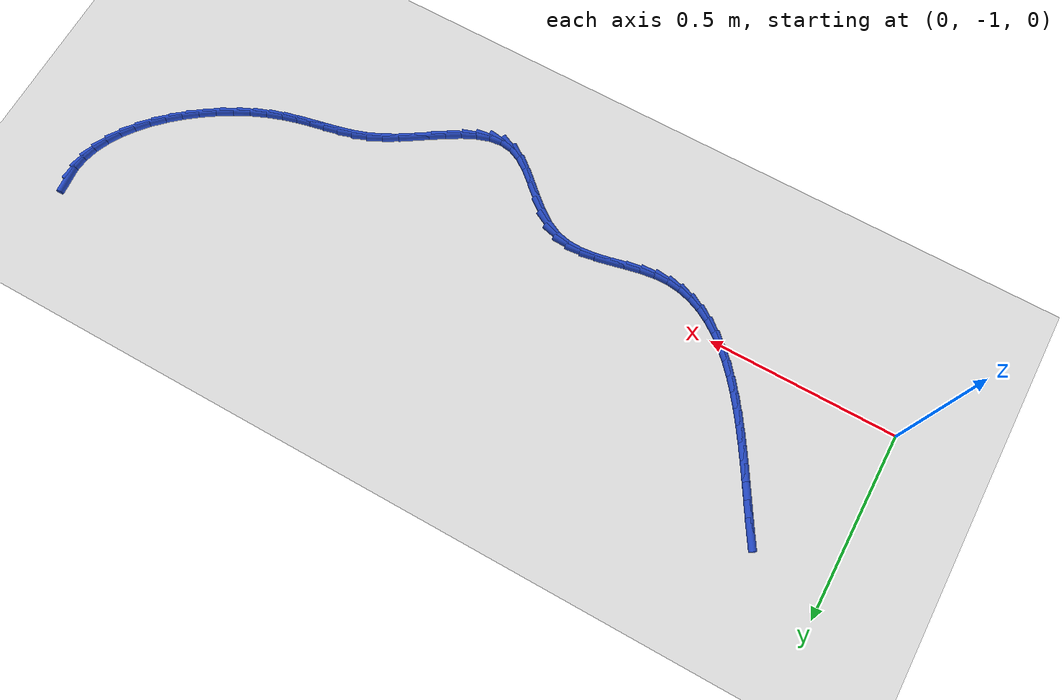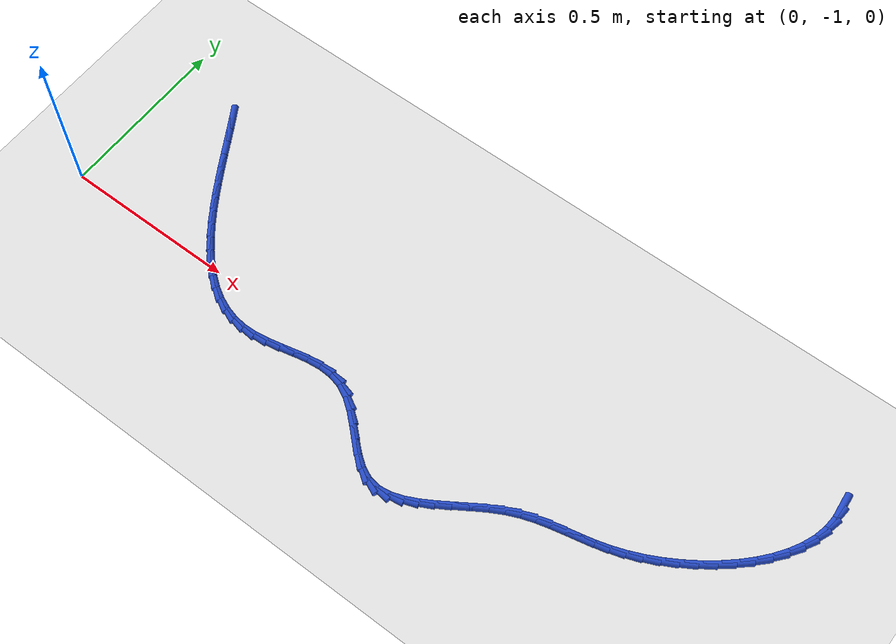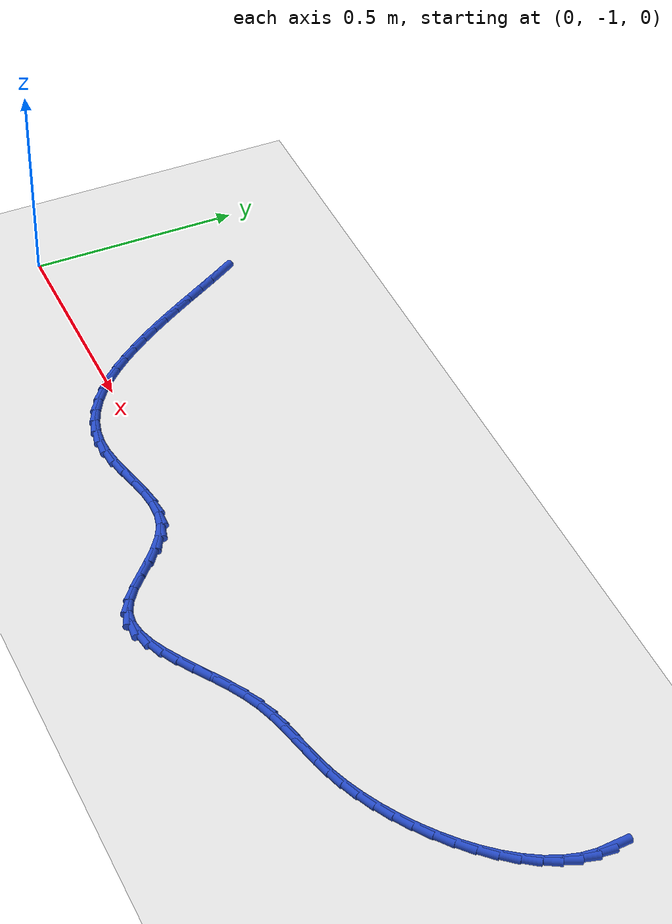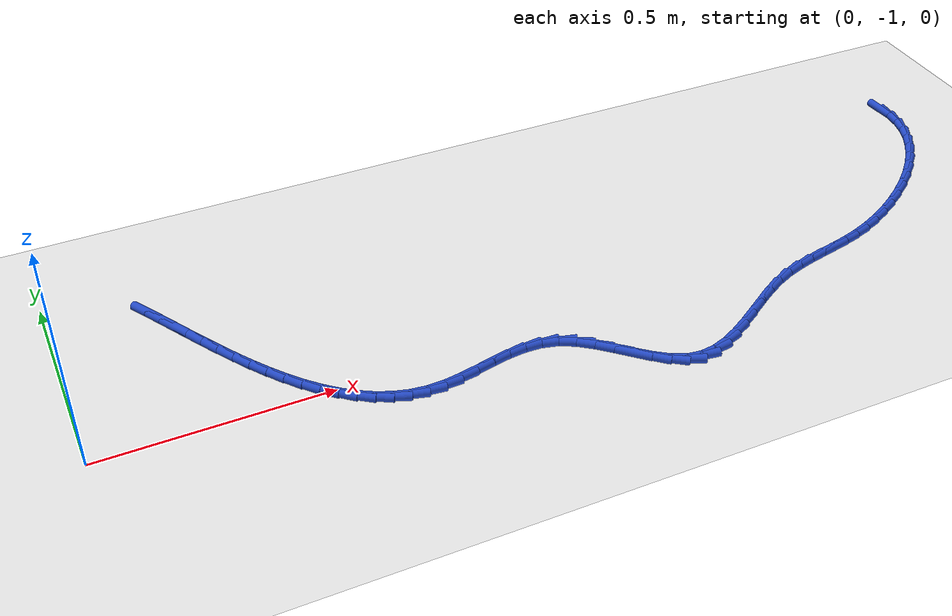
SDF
<sdf version="1.6">
 <world name="default">
  <model name="ground_plane">
   <static>1</static>
   <link name="link">
    <collision name="collision">
     <geometry><plane><normal>0 0 1</normal><size>100 100</size></plane></geometry>
     <surface><friction><ode><mu>100</mu><mu2>50</mu2></ode></friction></surface>
    </collision>
    <visual name="visual">
     <cast_shadows>0</cast_shadows>
     <geometry><plane><normal>0 0 1</normal><size>100 100</size></plane></geometry>
     <material>
      <script><uri>file://media/materials/scripts/gazebo.material</uri><name>Gazebo/WhiteGlow</name></script>
     </material>
    </visual>
   </link>
  </model>
  <model name="line">
   <link name="link_110">
    <pose>2.1453723418731316 -0.5781699876458133 0.01 0 1.57 -1.4833399422382945</pose>
    <collision name="collision">
     <geometry><cylinder><radius>0.01</radius><length>0.08</length></cylinder></geometry>
    </collision>
    <visual name="visual">
     <material>
      <script><name>Gazebo/Blue</name><uri>file://media/materials/scripts/gazebo.material</uri></script>
     </material>
     <geometry><cylinder><radius>0.01</radius><length>0.08</length></cylinder></geometry>
    </visual>
   </link>
   <link name="link_111">
    <pose>2.148490504637371 -0.6137329581880271 0.01 0 1.57 1.4764682847433395</pose>
    <collision name="collision">
     <geometry><cylinder><radius>0.01</radius><length>0.08</length></cylinder></geometry>
    </collision>
    <visual name="visual">
     <material>
      <script><name>Gazebo/Blue</name><uri>file://media/materials/scripts/gazebo.material</uri></script>
     </material>
     <geometry><cylinder><radius>0.01</radius><length>0.08</length></cylinder></geometry>
    </visual>
   </link>
   <link name="link_112">
    <pose>2.145111471984344 -0.6494487927089305 0.01 0 1.57 1.314288769849825</pose>
    <collision name="collision">
     <geometry><cylinder><radius>0.01</radius><length>0.08</length></cylinder></geometry>
    </collision>
    <visual name="visual">
     <material>
      <script><name>Gazebo/Blue</name><uri>file://media/materials/scripts/gazebo.material</uri></script>
     </material>
     <geometry><cylinder><radius>0.01</radius><length>0.08</length></cylinder></geometry>
    </visual>
   </link>
   <link name="link_113">
    <pose>2.135772142533697 -0.6850563001576554 0.01 0 1.57 1.1740667275033256</pose>
    <collision name="collision">
     <geometry><cylinder><radius>0.01</radius><length>0.08</length></cylinder></geometry>
    </collision>
    <visual name="visual">
     <material>
      <script><name>Gazebo/Blue</name><uri>file://media/materials/scripts/gazebo.material</uri></script>
     </material>
     <geometry><cylinder><radius>0.01</radius><length>0.08</length></cylinder></geometry>
    </visual>
   </link>
   <link name="link_114">
    <pose>2.1210094149050764 -0.7202942894833325 0.01 0 1.57 1.0544070582088172</pose>
    <collision name="collision">
     <geometry><cylinder><radius>0.01</radius><length>0.08</length></cylinder></geometry>
    </collision>
    <visual name="visual">
     <material>
      <script><name>Gazebo/Blue</name><uri>file://media/materials/scripts/gazebo.material</uri></script>
     </material>
     <geometry><cylinder><radius>0.01</radius><length>0.08</length></cylinder></geometry>
    </visual>
   </link>
   <link name="link_115">
    <pose>2.1013601877181305 -0.7549015696350925 0.01 0 1.57 0.9521903780876299</pose>
    <collision name="collision">
     <geometry><cylinder><radius>0.01</radius><length>0.08</length></cylinder></geometry>
    </collision>
    <visual name="visual">
     <material>
      <script><name>Gazebo/Blue</name><uri>file://media/materials/scripts/gazebo.material</uri></script>
     </material>
     <geometry><cylinder><radius>0.01</radius><length>0.08</length></cylinder></geometry>
    </visual>
   </link>
   <link name="link_116">
    <pose>2.0773613595925045 -0.7886169495620662 0.01 0 1.57 0.8639253964860568</pose>
    <collision name="collision">
     <geometry><cylinder><radius>0.01</radius><length>0.08</length></cylinder></geometry>
    </collision>
    <visual name="visual">
     <material>
      <script><name>Gazebo/Blue</name><uri>file://media/materials/scripts/gazebo.material</uri></script>
     </material>
     <geometry><cylinder><radius>0.01</radius><length>0.08</length></cylinder></geometry>
    </visual>
   </link>
   <link name="link_117">
    <pose>2.049549829147846 -0.8211792382133845 0.01 0 1.57 0.7863730461742056</pose>
    <collision name="collision">
     <geometry><cylinder><radius>0.01</radius><length>0.08</length></cylinder></geometry>
    </collision>
    <visual name="visual">
     <material>
      <script><name>Gazebo/Blue</name><uri>file://media/materials/scripts/gazebo.material</uri></script>
     </material>
     <geometry><cylinder><radius>0.01</radius><length>0.08</length></cylinder></geometry>
    </visual>
   </link>
   <link name="link_118">
    <pose>2.018462495003802 -0.8523272445381779 0.01 0 1.57 0.7167260524968759</pose>
    <collision name="collision">
     <geometry><cylinder><radius>0.01</radius><length>0.08</length></cylinder></geometry>
    </collision>
    <visual name="visual">
     <material>
      <script><name>Gazebo/Blue</name><uri>file://media/materials/scripts/gazebo.material</uri></script>
     </material>
     <geometry><cylinder><radius>0.01</radius><length>0.08</length></cylinder></geometry>
    </visual>
   </link>
   <link name="link_119">
    <pose>1.9846362557800175 -0.8817997774855783 0.01 0 1.57 0.6525813624149989</pose>
    <collision name="collision">
     <geometry><cylinder><radius>0.01</radius><length>0.08</length></cylinder></geometry>
    </collision>
    <visual name="visual">
     <material>
      <script><name>Gazebo/Blue</name><uri>file://media/materials/scripts/gazebo.material</uri></script>
     </material>
     <geometry><cylinder><radius>0.01</radius><length>0.08</length></cylinder></geometry>
    </visual>
   </link>
   <link name="link_120">
    <pose>1.9486080100961405 -0.9093356460047163 0.01 0 1.57 0.5918334779618475</pose>
    <collision name="collision">
     <geometry><cylinder><radius>0.01</radius><length>0.08</length></cylinder></geometry>
    </collision>
    <visual name="visual">
     <material>
      <script><name>Gazebo/Blue</name><uri>file://media/materials/scripts/gazebo.material</uri></script>
     </material>
     <geometry><cylinder><radius>0.01</radius><length>0.08</length></cylinder></geometry>
    </visual>
   </link>
   <link name="link_121">
    <pose>1.9109146565718165 -0.934673659044722 0.01 0 1.57 0.532541842741975</pose>
    <collision name="collision">
     <geometry><cylinder><radius>0.01</radius><length>0.08</length></cylinder></geometry>
    </collision>
    <visual name="visual">
     <material>
      <script><name>Gazebo/Blue</name><uri>file://media/materials/scripts/gazebo.material</uri></script>
     </material>
     <geometry><cylinder><radius>0.01</radius><length>0.08</length></cylinder></geometry>
    </visual>
   </link>
   <link name="link_122">
    <pose>1.8720930938266942 -0.9575526255547275 0.01 0 1.57 0.47278600495099216</pose>
    <collision name="collision">
     <geometry><cylinder><radius>0.01</radius><length>0.08</length></cylinder></geometry>
    </collision>
    <visual name="visual">
     <material>
      <script><name>Gazebo/Blue</name><uri>file://media/materials/scripts/gazebo.material</uri></script>
     </material>
     <geometry><cylinder><radius>0.01</radius><length>0.08</length></cylinder></geometry>
    </visual>
   </link>
   <link name="link_123">
    <pose>1.8326802204804187 -0.9777113544838627 0.01 0 1.57 0.41050255668486335</pose>
    <collision name="collision">
     <geometry><cylinder><radius>0.01</radius><length>0.08</length></cylinder></geometry>
    </collision>
    <visual name="visual">
     <material>
      <script><name>Gazebo/Blue</name><uri>file://media/materials/scripts/gazebo.material</uri></script>
     </material>
     <geometry><cylinder><radius>0.01</radius><length>0.08</length></cylinder></geometry>
    </visual>
   </link>
   <link name="link_124">
    <pose>1.793212935152637 -0.9948886547812588 0.01 0 1.57 0.3433404839839441</pose>
    <collision name="collision">
     <geometry><cylinder><radius>0.01</radius><length>0.08</length></cylinder></geometry>
    </collision>
    <visual name="visual">
     <material>
      <script><name>Gazebo/Blue</name><uri>file://media/materials/scripts/gazebo.material</uri></script>
     </material>
     <geometry><cylinder><radius>0.01</radius><length>0.08</length></cylinder></geometry>
    </visual>
   </link>
   <link name="link_125">
    <pose>1.7542267152281599 -1.0088262212513495 0.01 0 1.57 0.2772480209413171</pose>
    <collision name="collision">
     <geometry><cylinder><radius>0.01</radius><length>0.08</length></cylinder></geometry>
    </collision>
    <visual name="visual">
     <material>
      <script><name>Gazebo/Blue</name><uri>file://media/materials/scripts/gazebo.material</uri></script>
     </material>
     <geometry><cylinder><radius>0.01</radius><length>0.08</length></cylinder></geometry>
    </visual>
   </link>
   <link name="link_126">
    <pose>1.7160475390782015 -1.019691142042088 0.01 0 1.57 0.23140510409827456</pose>
    <collision name="collision">
     <geometry><cylinder><radius>0.01</radius><length>0.08</length></cylinder></geometry>
    </collision>
    <visual name="visual">
     <material>
      <script><name>Gazebo/Blue</name><uri>file://media/materials/scripts/gazebo.material</uri></script>
     </material>
     <geometry><cylinder><radius>0.01</radius><length>0.08</length></cylinder></geometry>
    </visual>
   </link>
   <link name="link_127">
    <pose>1.6785725739728394 -1.0285212176972656 0.01 0 1.57 0.21178849611738876</pose>
    <collision name="collision">
     <geometry><cylinder><radius>0.01</radius><length>0.08</length></cylinder></geometry>
    </collision>
    <visual name="visual">
     <material>
      <script><name>Gazebo/Blue</name><uri>file://media/materials/scripts/gazebo.material</uri></script>
     </material>
     <geometry><cylinder><radius>0.01</radius><length>0.08</length></cylinder></geometry>
    </visual>
   </link>
   <link name="link_128">
    <pose>1.6416465138821439 -1.036460797198075 0.01 0 1.57 0.22062725690698856</pose>
    <collision name="collision">
     <geometry><cylinder><radius>0.01</radius><length>0.08</length></cylinder></geometry>
    </collision>
    <visual name="visual">
     <material>
      <script><name>Gazebo/Blue</name><uri>file://media/materials/scripts/gazebo.material</uri></script>
     </material>
     <geometry><cylinder><radius>0.01</radius><length>0.08</length></cylinder></geometry>
    </visual>
   </link>
   <link name="link_129">
    <pose>1.605114052776185 -1.0446542295257097 0.01 0 1.57 0.25836799711161057</pose>
    <collision name="collision">
     <geometry><cylinder><radius>0.01</radius><length>0.08</length></cylinder></geometry>
    </collision>
    <visual name="visual">
     <material>
      <script><name>Gazebo/Blue</name><uri>file://media/materials/scripts/gazebo.material</uri></script>
     </material>
     <geometry><cylinder><radius>0.01</radius><length>0.08</length></cylinder></geometry>
    </visual>
   </link>
   <link name="link_130">
    <pose>1.5688198846250314 -1.0542458636613612 0.01 0 1.57 0.3233351945180989</pose>
    <collision name="collision">
     <geometry><cylinder><radius>0.01</radius><length>0.08</length></cylinder></geometry>
    </collision>
    <visual name="visual">
     <material>
      <script><name>Gazebo/Blue</name><uri>file://media/materials/scripts/gazebo.material</uri></script>
     </material>
     <geometry><cylinder><radius>0.01</radius><length>0.08</length></cylinder></geometry>
    </visual>
   </link>
   <link name="link_131">
    <pose>1.5326087033987539 -1.066380048586223 0.01 0 1.57 0.4111431979304385</pose>
    <collision name="collision">
     <geometry><cylinder><radius>0.01</radius><length>0.08</length></cylinder></geometry>
    </collision>
    <visual name="visual">
     <material>
      <script><name>Gazebo/Blue</name><uri>file://media/materials/scripts/gazebo.material</uri></script>
     </material>
     <geometry><cylinder><radius>0.01</radius><length>0.08</length></cylinder></geometry>
    </visual>
   </link>
   <link name="link_132">
    <pose>1.4963254181145664 -1.0821992356457344 0.01 0 1.57 0.5005495846525995</pose>
    <collision name="collision">
     <geometry><cylinder><radius>0.01</radius><length>0.08</length></cylinder></geometry>
    </collision>
    <visual name="visual">
     <material>
      <script><name>Gazebo/Blue</name><uri>file://media/materials/scripts/gazebo.material</uri></script>
     </material>
     <geometry><cylinder><radius>0.01</radius><length>0.08</length></cylinder></geometry>
    </visual>
   </link>
   <link name="link_133">
    <pose>1.4598964638225185 -1.1021264678162008 0.01 0 1.57 0.5562601559255833</pose>
    <collision name="collision">
     <geometry><cylinder><radius>0.01</radius><length>0.08</length></cylinder></geometry>
    </collision>
    <visual name="visual">
     <material>
      <script><name>Gazebo/Blue</name><uri>file://media/materials/scripts/gazebo.material</uri></script>
     </material>
     <geometry><cylinder><radius>0.01</radius><length>0.08</length></cylinder></geometry>
    </visual>
   </link>
   <link name="link_134">
    <pose>1.4234521446532444 -1.1247857906534122 0.01 0 1.57 0.5791806976524528</pose>
    <collision name="collision">
     <geometry><cylinder><radius>0.01</radius><length>0.08</length></cylinder></geometry>
    </collision>
    <visual name="visual">
     <material>
      <script><name>Gazebo/Blue</name><uri>file://media/materials/scripts/gazebo.material</uri></script>
     </material>
     <geometry><cylinder><radius>0.01</radius><length>0.08</length></cylinder></geometry>
    </visual>
   </link>
   <link name="link_135">
    <pose>1.3871541117541368 -1.1485246349262341 0.01 0 1.57 0.57191344569878</pose>
    <collision name="collision">
     <geometry><cylinder><radius>0.01</radius><length>0.08</length></cylinder></geometry>
    </collision>
    <visual name="visual">
     <material>
      <script><name>Gazebo/Blue</name><uri>file://media/materials/scripts/gazebo.material</uri></script>
     </material>
     <geometry><cylinder><radius>0.01</radius><length>0.08</length></cylinder></geometry>
    </visual>
   </link>
   <link name="link_136">
    <pose>1.3511640162725864 -1.1716904314035304 0.01 0 1.57 0.5326806991225983</pose>
    <collision name="collision">
     <geometry><cylinder><radius>0.01</radius><length>0.08</length></cylinder></geometry>
    </collision>
    <visual name="visual">
     <material>
      <script><name>Gazebo/Blue</name><uri>file://media/materials/scripts/gazebo.material</uri></script>
     </material>
     <geometry><cylinder><radius>0.01</radius><length>0.08</length></cylinder></geometry>
    </visual>
   </link>
   <link name="link_137">
    <pose>1.3156435093559842 -1.192630610854165 0.01 0 1.57 0.4548353524415002</pose>
    <collision name="collision">
     <geometry><cylinder><radius>0.01</radius><length>0.08</length></cylinder></geometry>
    </collision>
    <visual name="visual">
     <material>
      <script><name>Gazebo/Blue</name><uri>file://media/materials/scripts/gazebo.material</uri></script>
     </material>
     <geometry><cylinder><radius>0.01</radius><length>0.08</length></cylinder></geometry>
    </visual>
   </link>
   <link name="link_138">
    <pose>1.2807542421517217 -1.2096926040470033 0.01 0 1.57 0.32612001494537224</pose>
    <collision name="collision">
     <geometry><cylinder><radius>0.01</radius><length>0.08</length></cylinder></geometry>
    </collision>
    <visual name="visual">
     <material>
      <script><name>Gazebo/Blue</name><uri>file://media/materials/scripts/gazebo.material</uri></script>
     </material>
     <geometry><cylinder><radius>0.01</radius><length>0.08</length></cylinder></geometry>
    </visual>
   </link>
   <link name="link_139">
    <pose>1.2466578658071916 -1.2212238417509091 0.01 0 1.57 0.13044610880736526</pose>
    <collision name="collision">
     <geometry><cylinder><radius>0.01</radius><length>0.08</length></cylinder></geometry>
    </collision>
    <visual name="visual">
     <material>
      <script><name>Gazebo/Blue</name><uri>file://media/materials/scripts/gazebo.material</uri></script>
     </material>
     <geometry><cylinder><radius>0.01</radius><length>0.08</length></cylinder></geometry>
    </visual>
   </link>
   <link name="link_140">
    <pose>1.2135160314697828 -1.2255717547347469 0.01 0 1.57 -0.13922700307873626</pose>
    <collision name="collision">
     <geometry><cylinder><radius>0.01</radius><length>0.08</length></cylinder></geometry>
    </collision>
    <visual name="visual">
     <material>
      <script><name>Gazebo/Blue</name><uri>file://media/materials/scripts/gazebo.material</uri></script>
     </material>
     <geometry><cylinder><radius>0.01</radius><length>0.08</length></cylinder></geometry>
    </visual>
   </link>
   <link name="link_141">
    <pose>1.1814903743238516 -1.2210838830542643 0.01 0 1.57 -0.42883899187485386</pose>
    <collision name="collision">
     <geometry><cylinder><radius>0.01</radius><length>0.08</length></cylinder></geometry>
    </collision>
    <visual name="visual">
     <material>
      <script><name>Gazebo/Blue</name><uri>file://media/materials/scripts/gazebo.material</uri></script>
     </material>
     <geometry><cylinder><radius>0.01</radius><length>0.08</length></cylinder></geometry>
    </visual>
   </link>
   <link name="link_142">
    <pose>1.1506168778797021 -1.2069680090930277 0.01 0 1.57 -0.6221956457845699</pose>
    <collision name="collision">
     <geometry><cylinder><radius>0.01</radius><length>0.08</length></cylinder></geometry>
    </collision>
    <visual name="visual">
     <material>
      <script><name>Gazebo/Blue</name><uri>file://media/materials/scripts/gazebo.material</uri></script>
     </material>
     <geometry><cylinder><radius>0.01</radius><length>0.08</length></cylinder></geometry>
    </visual>
   </link>
   <link name="link_143">
    <pose>1.1205025031490057 -1.1853691089942648 0.01 0 1.57 -0.7226286781778778</pose>
    <collision name="collision">
     <geometry><cylinder><radius>0.01</radius><length>0.08</length></cylinder></geometry>
    </collision>
    <visual name="visual">
     <material>
      <script><name>Gazebo/Blue</name><uri>file://media/materials/scripts/gazebo.material</uri></script>
     </material>
     <geometry><cylinder><radius>0.01</radius><length>0.08</length></cylinder></geometry>
    </visual>
   </link>
   <link name="link_144">
    <pose>1.0906627246794676 -1.1590584977806613 0.01 0 1.57 -0.7545558318372615</pose>
    <collision name="collision">
     <geometry><cylinder><radius>0.01</radius><length>0.08</length></cylinder></geometry>
    </collision>
    <visual name="visual">
     <material>
      <script><name>Gazebo/Blue</name><uri>file://media/materials/scripts/gazebo.material</uri></script>
     </material>
     <geometry><cylinder><radius>0.01</radius><length>0.08</length></cylinder></geometry>
    </visual>
   </link>
   <link name="link_145">
    <pose>1.0606130170187928 -1.1308074904749035 0.01 0 1.57 -0.7283104841182068</pose>
    <collision name="collision">
     <geometry><cylinder><radius>0.01</radius><length>0.08</length></cylinder></geometry>
    </collision>
    <visual name="visual">
     <material>
      <script><name>Gazebo/Blue</name><uri>file://media/materials/scripts/gazebo.material</uri></script>
     </material>
     <geometry><cylinder><radius>0.01</radius><length>0.08</length></cylinder></geometry>
    </visual>
   </link>
   <link name="link_146">
    <pose>1.029868854714685 -1.103387402099676 0.01 0 1.57 -0.6410003900186892</pose>
    <collision name="collision">
     <geometry><cylinder><radius>0.01</radius><length>0.08</length></cylinder></geometry>
    </collision>
    <visual name="visual">
     <material>
      <script><name>Gazebo/Blue</name><uri>file://media/materials/scripts/gazebo.material</uri></script>
     </material>
     <geometry><cylinder><radius>0.01</radius><length>0.08</length></cylinder></geometry>
    </visual>
   </link>
   <link name="link_147">
    <pose>0.9979457123148497 -1.0795695476776648 0.01 0 1.57 -0.4790328266751527</pose>
    <collision name="collision">
     <geometry><cylinder><radius>0.01</radius><length>0.08</length></cylinder></geometry>
    </collision>
    <visual name="visual">
     <material>
      <script><name>Gazebo/Blue</name><uri>file://media/materials/scripts/gazebo.material</uri></script>
     </material>
     <geometry><cylinder><radius>0.01</radius><length>0.08</length></cylinder></geometry>
    </visual>
   </link>
   <link name="link_148">
    <pose>0.9643590643669923 -1.0621252422315566 0.01 0 1.57 -0.24475129439097826</pose>
    <collision name="collision">
     <geometry><cylinder><radius>0.01</radius><length>0.08</length></cylinder></geometry>
    </collision>
    <visual name="visual">
     <material>
      <script><name>Gazebo/Blue</name><uri>file://media/materials/scripts/gazebo.material</uri></script>
     </material>
     <geometry><cylinder><radius>0.01</radius><length>0.08</length></cylinder></geometry>
    </visual>
   </link>
   <link name="link_149">
    <pose>0.928748366203914 -1.0532311700088501 0.01 0 1.57 -0.03583911102767241</pose>
    <collision name="collision">
     <geometry><cylinder><radius>0.01</radius><length>0.08</length></cylinder></geometry>
    </collision>
    <visual name="visual">
     <material>
      <script><name>Gazebo/Blue</name><uri>file://media/materials/scripts/gazebo.material</uri></script>
     </material>
     <geometry><cylinder><radius>0.01</radius><length>0.08</length></cylinder></geometry>
    </visual>
   </link>
   <link name="link_150">
    <pose>0.8914143193015313 -1.051892577793088 0.01 0 1.57 0.10776440145580353</pose>
    <collision name="collision">
     <geometry><cylinder><radius>0.01</radius><length>0.08</length></cylinder></geometry>
    </collision>
    <visual name="visual">
     <material>
      <script><name>Gazebo/Blue</name><uri>file://media/materials/scripts/gazebo.material</uri></script>
     </material>
     <geometry><cylinder><radius>0.01</radius><length>0.08</length></cylinder></geometry>
    </visual>
   </link>
   <link name="link_151">
    <pose>0.852877187020682 -1.0560616600441808 0.01 0 1.57 0.1921015693455154</pose>
    <collision name="collision">
     <geometry><cylinder><radius>0.01</radius><length>0.08</length></cylinder></geometry>
    </collision>
    <visual name="visual">
     <material>
      <script><name>Gazebo/Blue</name><uri>file://media/materials/scripts/gazebo.material</uri></script>
     </material>
     <geometry><cylinder><radius>0.01</radius><length>0.08</length></cylinder></geometry>
    </visual>
   </link>
   <link name="link_152">
    <pose>0.8136573781502698 -1.0636899137268352 0.01 0 1.57 0.22561119832263846</pose>
    <collision name="collision">
     <geometry><cylinder><radius>0.01</radius><length>0.08</length></cylinder></geometry>
    </collision>
    <visual name="visual">
     <material>
      <script><name>Gazebo/Blue</name><uri>file://media/materials/scripts/gazebo.material</uri></script>
     </material>
     <geometry><cylinder><radius>0.01</radius><length>0.08</length></cylinder></geometry>
    </visual>
   </link>
   <link name="link_153">
    <pose>0.7742753014791952 -1.0727288358057583 0.01 0 1.57 0.2120441301990905</pose>
    <collision name="collision">
     <geometry><cylinder><radius>0.01</radius><length>0.08</length></cylinder></geometry>
    </collision>
    <visual name="visual">
     <material>
      <script><name>Gazebo/Blue</name><uri>file://media/materials/scripts/gazebo.material</uri></script>
     </material>
     <geometry><cylinder><radius>0.01</radius><length>0.08</length></cylinder></geometry>
    </visual>
   </link>
   <link name="link_154">
    <pose>0.7352513657963619 -1.0811299232456577 0.01 0 1.57 0.1487089822254389</pose>
    <collision name="collision">
     <geometry><cylinder><radius>0.01</radius><length>0.08</length></cylinder></geometry>
    </collision>
    <visual name="visual">
     <material>
      <script><name>Gazebo/Blue</name><uri>file://media/materials/scripts/gazebo.material</uri></script>
     </material>
     <geometry><cylinder><radius>0.01</radius><length>0.08</length></cylinder></geometry>
    </visual>
   </link>
   <link name="link_155">
    <pose>0.6971059798906726 -1.0868446730112407 0.01 0 1.57 0.02883930081942452</pose>
    <collision name="collision">
     <geometry><cylinder><radius>0.01</radius><length>0.08</length></cylinder></geometry>
    </collision>
    <visual name="visual">
     <material>
      <script><name>Gazebo/Blue</name><uri>file://media/materials/scripts/gazebo.material</uri></script>
     </material>
     <geometry><cylinder><radius>0.01</radius><length>0.08</length></cylinder></geometry>
    </visual>
   </link>
   <link name="link_156">
    <pose>0.6603396165673571 -1.0879052832778462 0.01 0 1.57 -0.12066703418239462</pose>
    <collision name="collision">
     <geometry><cylinder><radius>0.01</radius><length>0.08</length></cylinder></geometry>
    </collision>
    <visual name="visual">
     <material>
      <script><name>Gazebo/Blue</name><uri>file://media/materials/scripts/gazebo.material</uri></script>
     </material>
     <geometry><cylinder><radius>0.01</radius><length>0.08</length></cylinder></geometry>
    </visual>
   </link>
   <link name="link_157">
    <pose>0.6251334880628968 -1.0836363245876752 0.01 0 1.57 -0.2672735028216125</pose>
    <collision name="collision">
     <geometry><cylinder><radius>0.01</radius><length>0.08</length></cylinder></geometry>
    </collision>
    <visual name="visual">
     <material>
      <script><name>Gazebo/Blue</name><uri>file://media/materials/scripts/gazebo.material</uri></script>
     </material>
     <geometry><cylinder><radius>0.01</radius><length>0.08</length></cylinder></geometry>
    </visual>
   </link>
   <link name="link_158">
    <pose>0.5914118582351465 -1.0744024990142018 0.01 0 1.57 -0.4036622902579568</pose>
    <collision name="collision">
     <geometry><cylinder><radius>0.01</radius><length>0.08</length></cylinder></geometry>
    </collision>
    <visual name="visual">
     <material>
      <script><name>Gazebo/Blue</name><uri>file://media/materials/scripts/gazebo.material</uri></script>
     </material>
     <geometry><cylinder><radius>0.01</radius><length>0.08</length></cylinder></geometry>
    </visual>
   </link>
   <link name="link_159">
    <pose>0.559091701872557 -1.0605980149113505 0.01 0 1.57 -0.5255824316395215</pose>
    <collision name="collision">
     <geometry><cylinder><radius>0.01</radius><length>0.08</length></cylinder></geometry>
    </collision>
    <visual name="visual">
     <material>
      <script><name>Gazebo/Blue</name><uri>file://media/materials/scripts/gazebo.material</uri></script>
     </material>
     <geometry><cylinder><radius>0.01</radius><length>0.08</length></cylinder></geometry>
    </visual>
   </link>
   <link name="link_160">
    <pose>0.5280899937635775 -1.0426170806330455 0.01 0 1.57 -0.6313178552609827</pose>
    <collision name="collision">
     <geometry><cylinder><radius>0.01</radius><length>0.08</length></cylinder></geometry>
    </collision>
    <visual name="visual">
     <material>
      <script><name>Gazebo/Blue</name><uri>file://media/materials/scripts/gazebo.material</uri></script>
     </material>
     <geometry><cylinder><radius>0.01</radius><length>0.08</length></cylinder></geometry>
    </visual>
   </link>
   <link name="link_161">
    <pose>0.49832370869665865 -1.0208539045332112 0.01 0 1.57 -0.72108316731544</pose>
    <collision name="collision">
     <geometry><cylinder><radius>0.01</radius><length>0.08</length></cylinder></geometry>
    </collision>
    <visual name="visual">
     <material>
      <script><name>Gazebo/Blue</name><uri>file://media/materials/scripts/gazebo.material</uri></script>
     </material>
     <geometry><cylinder><radius>0.01</radius><length>0.08</length></cylinder></geometry>
    </visual>
   </link>
   <link name="link_162">
    <pose>0.46970982146025125 -0.995702694965773 0.01 0 1.57 -0.7961810983746915</pose>
    <collision name="collision">
     <geometry><cylinder><radius>0.01</radius><length>0.08</length></cylinder></geometry>
    </collision>
    <visual name="visual">
     <material>
      <script><name>Gazebo/Blue</name><uri>file://media/materials/scripts/gazebo.material</uri></script>
     </material>
     <geometry><cylinder><radius>0.01</radius><length>0.08</length></cylinder></geometry>
    </visual>
   </link>
   <link name="link_163">
    <pose>0.44216530684280503 -0.9675576602846544 0.01 0 1.57 -0.8583275495029448</pose>
    <collision name="collision">
     <geometry><cylinder><radius>0.01</radius><length>0.08</length></cylinder></geometry>
    </collision>
    <visual name="visual">
     <material>
      <script><name>Gazebo/Blue</name><uri>file://media/materials/scripts/gazebo.material</uri></script>
     </material>
     <geometry><cylinder><radius>0.01</radius><length>0.08</length></cylinder></geometry>
    </visual>
   </link>
   <link name="link_164">
    <pose>0.4156071396327707 -0.9368130088437809 0.01 0 1.57 -0.9092424068788875</pose>
    <collision name="collision">
     <geometry><cylinder><radius>0.01</radius><length>0.08</length></cylinder></geometry>
    </collision>
    <visual name="visual">
     <material>
      <script><name>Gazebo/Blue</name><uri>file://media/materials/scripts/gazebo.material</uri></script>
     </material>
     <geometry><cylinder><radius>0.01</radius><length>0.08</length></cylinder></geometry>
    </visual>
   </link>
   <link name="link_165">
    <pose>0.3899522946185984 -0.9038629489970766 0.01 0 1.57 -0.9504501426758545</pose>
    <collision name="collision">
     <geometry><cylinder><radius>0.01</radius><length>0.08</length></cylinder></geometry>
    </collision>
    <visual name="visual">
     <material>
      <script><name>Gazebo/Blue</name><uri>file://media/materials/scripts/gazebo.material</uri></script>
     </material>
     <geometry><cylinder><radius>0.01</radius><length>0.08</length></cylinder></geometry>
    </visual>
   </link>
   <link name="link_166">
    <pose>0.36511774658873897 -0.8691016890984667 0.01 0 1.57 -0.9832063736911643</pose>
    <collision name="collision">
     <geometry><cylinder><radius>0.01</radius><length>0.08</length></cylinder></geometry>
    </collision>
    <visual name="visual">
     <material>
      <script><name>Gazebo/Blue</name><uri>file://media/materials/scripts/gazebo.material</uri></script>
     </material>
     <geometry><cylinder><radius>0.01</radius><length>0.08</length></cylinder></geometry>
    </visual>
   </link>
   <link name="link_167">
    <pose>0.3410204703316418 -0.832923437501875 0.01 0 1.57 -1.008486864680225</pose>
    <collision name="collision">
     <geometry><cylinder><radius>0.01</radius><length>0.08</length></cylinder></geometry>
    </collision>
    <visual name="visual">
     <material>
      <script><name>Gazebo/Blue</name><uri>file://media/materials/scripts/gazebo.material</uri></script>
     </material>
     <geometry><cylinder><radius>0.01</radius><length>0.08</length></cylinder></geometry>
    </visual>
   </link>
   <link name="link_168">
    <pose>0.3175774406357576 -0.7957224025612261 0.01 0 1.57 -1.0270008298523288</pose>
    <collision name="collision">
     <geometry><cylinder><radius>0.01</radius><length>0.08</length></cylinder></geometry>
    </collision>
    <visual name="visual">
     <material>
      <script><name>Gazebo/Blue</name><uri>file://media/materials/scripts/gazebo.material</uri></script>
     </material>
     <geometry><cylinder><radius>0.01</radius><length>0.08</length></cylinder></geometry>
    </visual>
   </link>
   <link name="link_169">
    <pose>0.2947056322895366 -0.7578927926304448 0.01 0 1.57 -1.0392081590736886</pose>
    <collision name="collision">
     <geometry><cylinder><radius>0.01</radius><length>0.08</length></cylinder></geometry>
    </collision>
    <visual name="visual">
     <material>
      <script><name>Gazebo/Blue</name><uri>file://media/materials/scripts/gazebo.material</uri></script>
     </material>
     <geometry><cylinder><radius>0.01</radius><length>0.08</length></cylinder></geometry>
    </visual>
   </link>
   <link name="link_170">
    <pose>0.27232202008142925 -0.7198288160634558 0.01 0 1.57 -1.0453301391508123</pose>
    <collision name="collision">
     <geometry><cylinder><radius>0.01</radius><length>0.08</length></cylinder></geometry>
    </collision>
    <visual name="visual">
     <material>
      <script><name>Gazebo/Blue</name><uri>file://media/materials/scripts/gazebo.material</uri></script>
     </material>
     <geometry><cylinder><radius>0.01</radius><length>0.08</length></cylinder></geometry>
    </visual>
   </link>
   <link name="link_171">
    <pose>0.2503435787998858 -0.6819246812141835 0.01 0 1.57 -1.0453478469046102</pose>
    <collision name="collision">
     <geometry><cylinder><radius>0.01</radius><length>0.08</length></cylinder></geometry>
    </collision>
    <visual name="visual">
     <material>
      <script><name>Gazebo/Blue</name><uri>file://media/materials/scripts/gazebo.material</uri></script>
     </material>
     <geometry><cylinder><radius>0.01</radius><length>0.08</length></cylinder></geometry>
    </visual>
   </link>
   <link name="link_172">
    <pose>0.22868728323335702 -0.6445745964365535 0.01 0 1.57 -1.0389944644719538</pose>
    <collision name="collision">
     <geometry><cylinder><radius>0.01</radius><length>0.08</length></cylinder></geometry>
    </collision>
    <visual name="visual">
     <material>
      <script><name>Gazebo/Blue</name><uri>file://media/materials/scripts/gazebo.material</uri></script>
     </material>
     <geometry><cylinder><radius>0.01</radius><length>0.08</length></cylinder></geometry>
    </visual>
   </link>
   <link name="link_173">
    <pose>0.20727032715903132 -0.6081722515123731 0.01 0 1.57 -1.0293670748201285</pose>
    <collision name="collision">
     <geometry><cylinder><radius>0.01</radius><length>0.08</length></cylinder></geometry>
    </collision>
    <visual name="visual">
     <material>
      <script><name>Gazebo/Blue</name><uri>file://media/materials/scripts/gazebo.material</uri></script>
     </material>
     <geometry><cylinder><radius>0.01</radius><length>0.08</length></cylinder></geometry>
    </visual>
   </link>
  </model>
 </world>
</sdf>
